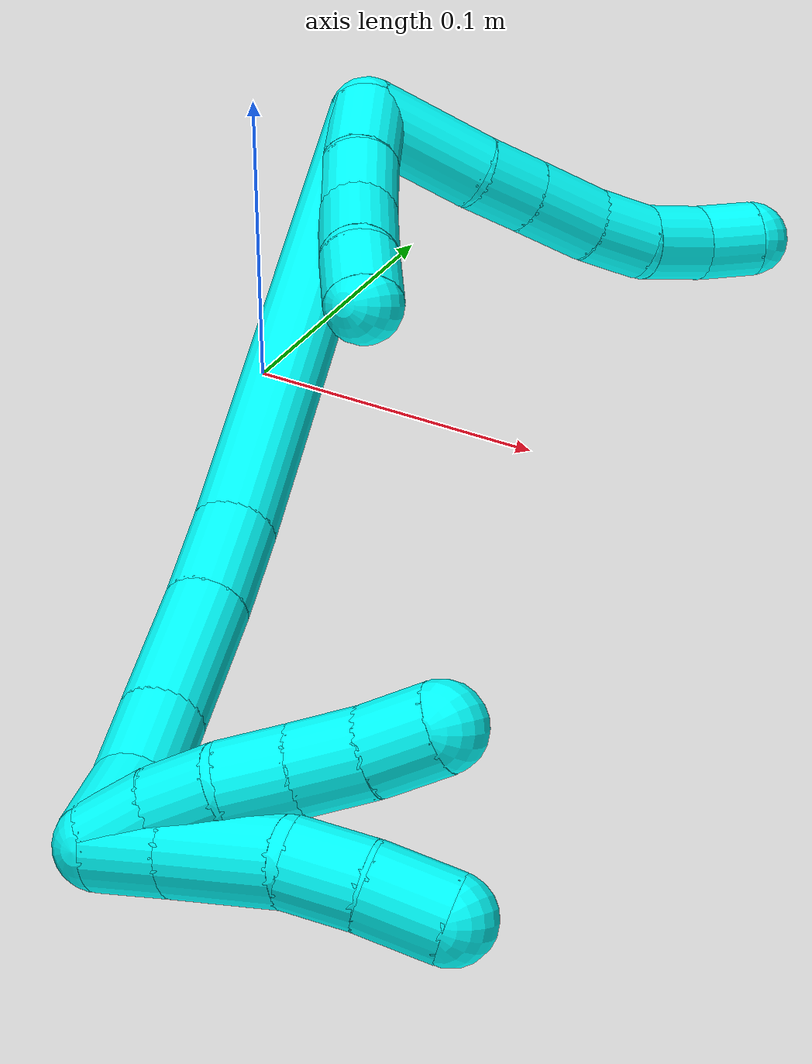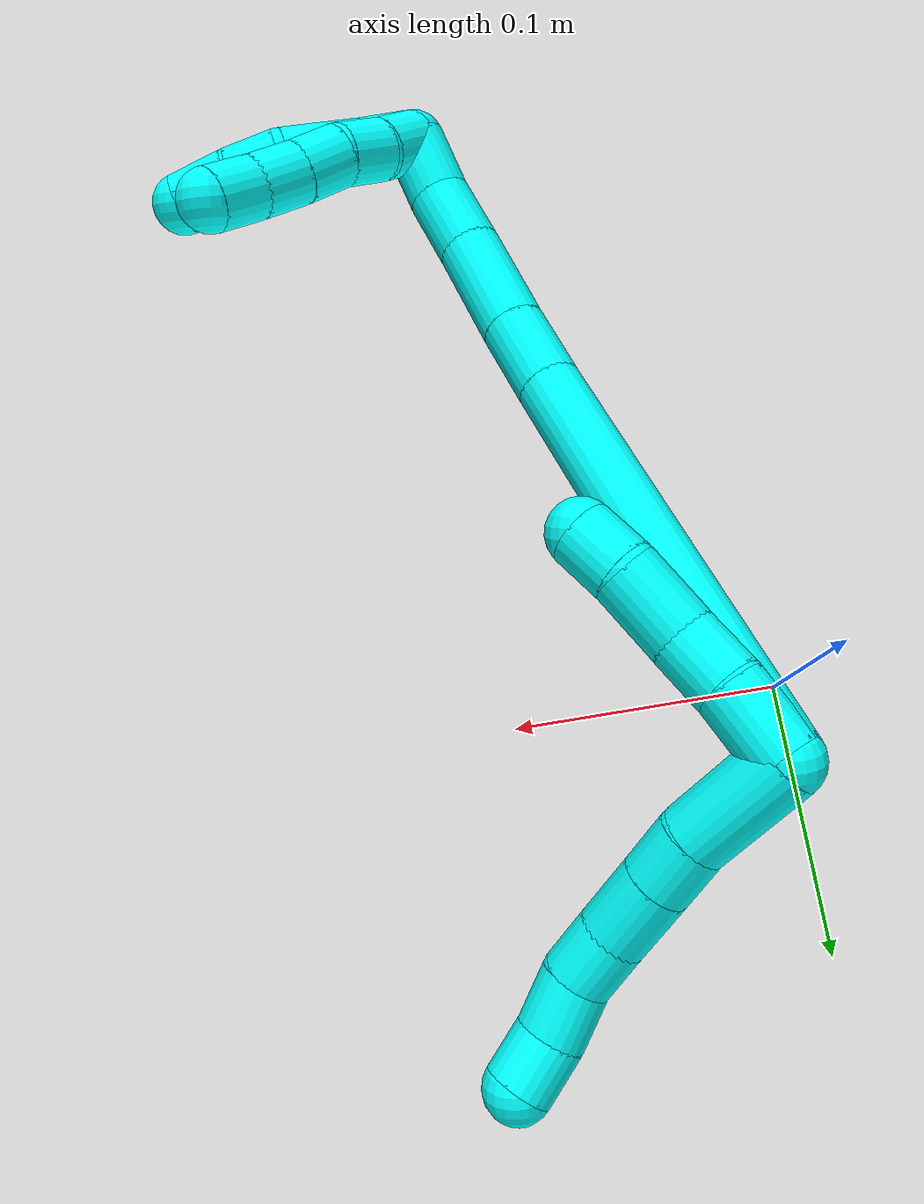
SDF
<sdf version="1.7">
 <world name="default">
  <model name="photoneo_s_sensor">
   <static>1</static>
   <pose>0 0 2 1.57079 1.57079 3.14159</pose>
   <link name="link">
    <inertial><mass>0.1</mass></inertial>
    <sensor name="sensor" type="depth">
     <update_rate>30</update_rate>
     <camera>
      <horizontal_fov>1.22</horizontal_fov>
      <image><width>1920</width><height>1200</height><format>B8G8R8</format></image>
      <clip><near>0.1</near><far>4</far></clip>
      <depth_camera><output>points</output></depth_camera>
     </camera>
     <plugin name="camera_plugin" filename="libgazebo_ros_depth_camera.so">
      <baseline>0.2</baseline>
      <alwaysOn>1</alwaysOn>
      <updateRate>0.0</updateRate>
      <cameraName>camera_ir</cameraName>
      <imageTopicName>/camera/color/image_raw</imageTopicName>
      <cameraInfoTopicName>/camera/color/camera_info</cameraInfoTopicName>
      <depthImageTopicName>/camera/depth/image_raw</depthImageTopicName>
      <depthImageCameraInfoTopicName>/camera/depth/camera_info</depthImageCameraInfoTopicName>
      <pointCloudTopicName>/camera/depth/points</pointCloudTopicName>
      <frameName>fr_optical</frameName>
      <pointCloudCutoff>0.1</pointCloudCutoff>
      <pointCloudCutoffMax>2.0</pointCloudCutoffMax>
      <distortionK1>0</distortionK1>
      <distortionK2>0</distortionK2>
      <distortionK3>0</distortionK3>
      <distortionT1>0</distortionT1>
      <distortionT2>0</distortionT2>
      <CxPrime>0</CxPrime>
      <Cx>0</Cx>
      <Cy>0</Cy>
      <focalLength>0</focalLength>
      <hackBaseline>0</hackBaseline>
     </plugin>
    </sensor>
   </link>
  </model>
  <model name="bin">
   <static>1</static>
   <link name="bottom">
    <collision name="collision-bottom">
     <pose>0 0 -0.01 0 -0 0</pose>
     <geometry><box><size>0.8 0.6 0.02</size></box></geometry>
     <surface>
      <friction><ode><mu>100</mu><mu2>100</mu2></ode></friction>
      <contact><collide_bitmask>65535</collide_bitmask></contact>
     </surface>
    </collision>
   </link>
   <link name="west_wall">
    <collision name="collision-west_wall">
     <pose>-0.41 0 0.1 0 -0 0</pose>
     <geometry><box><size>0.02 0.6 0.2</size></box></geometry>
     <surface>
      <friction><ode><mu>100</mu><mu2>100</mu2></ode></friction>
      <contact><collide_bitmask>65535</collide_bitmask></contact>
     </surface>
    </collision>
   </link>
   <link name="east_wall">
    <collision name="collision-east_wall">
     <pose>0.41 0 0.1 0 -0 0</pose>
     <geometry><box><size>0.02 0.6 0.2</size></box></geometry>
     <surface>
      <friction><ode><mu>100</mu><mu2>100</mu2></ode></friction>
      <contact><collide_bitmask>65535</collide_bitmask></contact>
     </surface>
    </collision>
   </link>
   <link name="south_wall">
    <collision name="collision-south_wall">
     <pose>0 -0.31 0.1 0 -0 0</pose>
     <geometry><box><size>0.8 0.02 0.2</size></box></geometry>
     <surface>
      <friction><ode><mu>100</mu><mu2>100</mu2></ode></friction>
      <contact><collide_bitmask>65535</collide_bitmask></contact>
     </surface>
    </collision>
   </link>
   <link name="north_wall">
    <collision name="collision-north_wall">
     <pose>0 0.31 0.1 0 -0 0</pose>
     <geometry><box><size>0.8 0.02 0.2</size></box></geometry>
     <surface>
      <friction><ode><mu>100</mu><mu2>100</mu2></ode></friction>
      <contact><collide_bitmask>65535</collide_bitmask></contact>
     </surface>
    </collision>
   </link>
  </model>
  <model name="3">
   <static>0</static>
   <link name="3">
    <collision name="collision-cylinder-e_1_2_8">
     <pose>0.015367 0.001045 -0.013637 -3.06514 0.843506 -2.97153</pose>
     <geometry><cylinder><radius>0.0125</radius><length>0.041144</length></cylinder></geometry>
     <surface>
      <friction><ode><mu>1.16</mu><mu2>1.16</mu2><slip1>0</slip1><slip2>0</slip2></ode></friction>
      <contact><ode><kp>1e+06</kp><kd>1</kd><max_vel>0</max_vel><min_depth>0.001</min_depth></ode></contact>
     </surface>
    </collision>
    <visual name="visual-cylinder-e_1_2_8">
     <pose>0.015367 0.001045 -0.013637 -3.06514 0.843506 -2.97153</pose>
     <geometry><cylinder><radius>0.0125</radius><length>0.041144</length></cylinder></geometry>
     <material><ambient>0.003922 1 0.996078 1</ambient></material>
    </visual>
    <collision name="collision-cylinder-e_2_8_9">
     <pose>0.037078 0.002572 -0.035178 -3.08061 0.675453 -2.96833</pose>
     <geometry><cylinder><radius>0.0125</radius><length>0.020292</length></cylinder></geometry>
     <surface>
      <friction><ode><mu>1.16</mu><mu2>1.16</mu2><slip1>0</slip1><slip2>0</slip2></ode></friction>
      <contact><ode><kp>1e+06</kp><kd>1</kd><max_vel>0</max_vel><min_depth>0.001</min_depth></ode></contact>
     </surface>
    </collision>
    <visual name="visual-cylinder-e_2_8_9">
     <pose>0.037078 0.002572 -0.035178 -3.08061 0.675453 -2.96833</pose>
     <geometry><cylinder><radius>0.0125</radius><length>0.020292</length></cylinder></geometry>
     <material><ambient>0.003922 1 0.996078 1</ambient></material>
    </visual>
    <collision name="collision-cylinder-e_3_9_10">
     <pose>0.051464 0.003592 -0.05297 -3.08726 0.682102 -2.98876</pose>
     <geometry><cylinder><radius>0.0125</radius><length>0.025513</length></cylinder></geometry>
     <surface>
      <friction><ode><mu>1.16</mu><mu2>1.16</mu2><slip1>0</slip1><slip2>0</slip2></ode></friction>
      <contact><ode><kp>1e+06</kp><kd>1</kd><max_vel>0</max_vel><min_depth>0.001</min_depth></ode></contact>
     </surface>
    </collision>
    <visual name="visual-cylinder-e_3_9_10">
     <pose>0.051464 0.003592 -0.05297 -3.08726 0.682102 -2.98876</pose>
     <geometry><cylinder><radius>0.0125</radius><length>0.025513</length></cylinder></geometry>
     <material><ambient>0.003922 1 0.996078 1</ambient></material>
    </visual>
    <collision name="collision-cylinder-e_4_10_11">
     <pose>0.06602 0.005699 -0.070895 -2.94883 0.671967 -2.60143</pose>
     <geometry><cylinder><radius>0.0125</radius><length>0.020929</length></cylinder></geometry>
     <surface>
      <friction><ode><mu>1.16</mu><mu2>1.16</mu2><slip1>0</slip1><slip2>0</slip2></ode></friction>
      <contact><ode><kp>1e+06</kp><kd>1</kd><max_vel>0</max_vel><min_depth>0.001</min_depth></ode></contact>
     </surface>
    </collision>
    <visual name="visual-cylinder-e_4_10_11">
     <pose>0.06602 0.005699 -0.070895 -2.94883 0.671967 -2.60143</pose>
     <geometry><cylinder><radius>0.0125</radius><length>0.020929</length></cylinder></geometry>
     <material><ambient>0.003922 1 0.996078 1</ambient></material>
    </visual>
    <collision name="collision-cylinder-e_5_11_12">
     <pose>0.076894 0.010723 -0.088337 -2.7895 0.410383 -1.72713</pose>
     <geometry><cylinder><radius>0.0125</radius><length>0.021851</length></cylinder></geometry>
     <surface>
      <friction><ode><mu>1.16</mu><mu2>1.16</mu2><slip1>0</slip1><slip2>0</slip2></ode></friction>
      <contact><ode><kp>1e+06</kp><kd>1</kd><max_vel>0</max_vel><min_depth>0.001</min_depth></ode></contact>
     </surface>
    </collision>
    <visual name="visual-cylinder-e_5_11_12">
     <pose>0.076894 0.010723 -0.088337 -2.7895 0.410383 -1.72713</pose>
     <geometry><cylinder><radius>0.0125</radius><length>0.021851</length></cylinder></geometry>
     <material><ambient>0.003922 1 0.996078 1</ambient></material>
    </visual>
    <collision name="collision-cylinder-e_6_12_6">
     <pose>0.086 0.019118 -0.105209 -2.55721 0.487465 -1.38164</pose>
     <geometry><cylinder><radius>0.0125</radius><length>0.02027</length></cylinder></geometry>
     <surface>
      <friction><ode><mu>1.16</mu><mu2>1.16</mu2><slip1>0</slip1><slip2>0</slip2></ode></friction>
      <contact><ode><kp>1e+06</kp><kd>1</kd><max_vel>0</max_vel><min_depth>0.001</min_depth></ode></contact>
     </surface>
    </collision>
    <visual name="visual-cylinder-e_6_12_6">
     <pose>0.086 0.019118 -0.105209 -2.55721 0.487465 -1.38164</pose>
     <geometry><cylinder><radius>0.0125</radius><length>0.02027</length></cylinder></geometry>
     <material><ambient>0.003922 1 0.996078 1</ambient></material>
    </visual>
    <collision name="collision-cylinder-e_1_2_13">
     <pose>0.009075 -0.003672 0.010405 0.339272 0.688276 0.122621</pose>
     <geometry><cylinder><radius>0.0125</radius><length>0.028574</length></cylinder></geometry>
     <surface>
      <friction><ode><mu>1.16</mu><mu2>1.16</mu2><slip1>0</slip1><slip2>0</slip2></ode></friction>
      <contact><ode><kp>1e+06</kp><kd>1</kd><max_vel>0</max_vel><min_depth>0.001</min_depth></ode></contact>
     </surface>
    </collision>
    <visual name="visual-cylinder-e_1_2_13">
     <pose>0.009075 -0.003672 0.010405 0.339272 0.688276 0.122621</pose>
     <geometry><cylinder><radius>0.0125</radius><length>0.028574</length></cylinder></geometry>
     <material><ambient>0.003922 1 0.996078 1</ambient></material>
    </visual>
    <collision name="collision-cylinder-e_2_13_14">
     <pose>0.026079 -0.010838 0.027968 0.454069 0.783177 0.190205</pose>
     <geometry><cylinder><radius>0.0125</radius><length>0.022478</length></cylinder></geometry>
     <surface>
      <friction><ode><mu>1.16</mu><mu2>1.16</mu2><slip1>0</slip1><slip2>0</slip2></ode></friction>
      <contact><ode><kp>1e+06</kp><kd>1</kd><max_vel>0</max_vel><min_depth>0.001</min_depth></ode></contact>
     </surface>
    </collision>
    <visual name="visual-cylinder-e_2_13_14">
     <pose>0.026079 -0.010838 0.027968 0.454069 0.783177 0.190205</pose>
     <geometry><cylinder><radius>0.0125</radius><length>0.022478</length></cylinder></geometry>
     <material><ambient>0.003922 1 0.996078 1</ambient></material>
    </visual>
    <collision name="collision-cylinder-e_3_14_15">
     <pose>0.043429 -0.015494 0.045815 0.108333 0.719453 0.040777</pose>
     <geometry><cylinder><radius>0.0125</radius><length>0.028589</length></cylinder></geometry>
     <surface>
      <friction><ode><mu>1.16</mu><mu2>1.16</mu2><slip1>0</slip1><slip2>0</slip2></ode></friction>
      <contact><ode><kp>1e+06</kp><kd>1</kd><max_vel>0</max_vel><min_depth>0.001</min_depth></ode></contact>
     </surface>
    </collision>
    <visual name="visual-cylinder-e_3_14_15">
     <pose>0.043429 -0.015494 0.045815 0.108333 0.719453 0.040777</pose>
     <geometry><cylinder><radius>0.0125</radius><length>0.028589</length></cylinder></geometry>
     <material><ambient>0.003922 1 0.996078 1</ambient></material>
    </visual>
    <collision name="collision-cylinder-e_4_15_5">
     <pose>0.060532 -0.019086 0.062724 0.372359 0.855345 0.171292</pose>
     <geometry><cylinder><radius>0.0125</radius><length>0.020359</length></cylinder></geometry>
     <surface>
      <friction><ode><mu>1.16</mu><mu2>1.16</mu2><slip1>0</slip1><slip2>0</slip2></ode></friction>
      <contact><ode><kp>1e+06</kp><kd>1</kd><max_vel>0</max_vel><min_depth>0.001</min_depth></ode></contact>
     </surface>
    </collision>
    <visual name="visual-cylinder-e_4_15_5">
     <pose>0.060532 -0.019086 0.062724 0.372359 0.855345 0.171292</pose>
     <geometry><cylinder><radius>0.0125</radius><length>0.020359</length></cylinder></geometry>
     <material><ambient>0.003922 1 0.996078 1</ambient></material>
    </visual>
    <collision name="collision-cylinder-e_1_2_16">
     <pose>0.048148 -0.041432 0.057047 0.628137 0.599155 0.199987</pose>
     <geometry><cylinder><radius>0.0125</radius><length>0.170753</length></cylinder></geometry>
     <surface>
      <friction><ode><mu>1.16</mu><mu2>1.16</mu2><slip1>0</slip1><slip2>0</slip2></ode></friction>
      <contact><ode><kp>1e+06</kp><kd>1</kd><max_vel>0</max_vel><min_depth>0.001</min_depth></ode></contact>
     </surface>
    </collision>
    <visual name="visual-cylinder-e_1_2_16">
     <pose>0.048148 -0.041432 0.057047 0.628137 0.599155 0.199987</pose>
     <geometry><cylinder><radius>0.0125</radius><length>0.170753</length></cylinder></geometry>
     <material><ambient>0.003922 1 0.996078 1</ambient></material>
    </visual>
    <collision name="collision-cylinder-e_2_16_17">
     <pose>0.104839 -0.089145 0.125534 0.502207 0.579637 0.152698</pose>
     <geometry><cylinder><radius>0.0125</radius><length>0.031197</length></cylinder></geometry>
     <surface>
      <friction><ode><mu>1.16</mu><mu2>1.16</mu2><slip1>0</slip1><slip2>0</slip2></ode></friction>
      <contact><ode><kp>1e+06</kp><kd>1</kd><max_vel>0</max_vel><min_depth>0.001</min_depth></ode></contact>
     </surface>
    </collision>
    <visual name="visual-cylinder-e_2_16_17">
     <pose>0.104839 -0.089145 0.125534 0.502207 0.579637 0.152698</pose>
     <geometry><cylinder><radius>0.0125</radius><length>0.031197</length></cylinder></geometry>
     <material><ambient>0.003922 1 0.996078 1</ambient></material>
    </visual>
    <collision name="collision-cylinder-e_3_17_18">
     <pose>0.124562 -0.104065 0.153092 0.491917 0.548672 0.141068</pose>
     <geometry><cylinder><radius>0.0125</radius><length>0.042867</length></cylinder></geometry>
     <surface>
      <friction><ode><mu>1.16</mu><mu2>1.16</mu2><slip1>0</slip1><slip2>0</slip2></ode></friction>
      <contact><ode><kp>1e+06</kp><kd>1</kd><max_vel>0</max_vel><min_depth>0.001</min_depth></ode></contact>
     </surface>
    </collision>
    <visual name="visual-cylinder-e_3_17_18">
     <pose>0.124562 -0.104065 0.153092 0.491917 0.548672 0.141068</pose>
     <geometry><cylinder><radius>0.0125</radius><length>0.042867</length></cylinder></geometry>
     <material><ambient>0.003922 1 0.996078 1</ambient></material>
    </visual>
    <collision name="collision-cylinder-e_4_18_19">
     <pose>0.143165 -0.116901 0.18049 0.356421 0.552784 0.102095</pose>
     <geometry><cylinder><radius>0.0125</radius><length>0.028281</length></cylinder></geometry>
     <surface>
      <friction><ode><mu>1.16</mu><mu2>1.16</mu2><slip1>0</slip1><slip2>0</slip2></ode></friction>
      <contact><ode><kp>1e+06</kp><kd>1</kd><max_vel>0</max_vel><min_depth>0.001</min_depth></ode></contact>
     </surface>
    </collision>
    <visual name="visual-cylinder-e_4_18_19">
     <pose>0.143165 -0.116901 0.18049 0.356421 0.552784 0.102095</pose>
     <geometry><cylinder><radius>0.0125</radius><length>0.028281</length></cylinder></geometry>
     <material><ambient>0.003922 1 0.996078 1</ambient></material>
    </visual>
    <collision name="collision-cylinder-e_5_19_1">
     <pose>0.156114 -0.123386 0.203817 0.187467 0.423234 0.040387</pose>
     <geometry><cylinder><radius>0.0125</radius><length>0.026902</length></cylinder></geometry>
     <surface>
      <friction><ode><mu>1.16</mu><mu2>1.16</mu2><slip1>0</slip1><slip2>0</slip2></ode></friction>
      <contact><ode><kp>1e+06</kp><kd>1</kd><max_vel>0</max_vel><min_depth>0.001</min_depth></ode></contact>
     </surface>
    </collision>
    <visual name="visual-cylinder-e_5_19_1">
     <pose>0.156114 -0.123386 0.203817 0.187467 0.423234 0.040387</pose>
     <geometry><cylinder><radius>0.0125</radius><length>0.026902</length></cylinder></geometry>
     <material><ambient>0.003922 1 0.996078 1</ambient></material>
    </visual>
    <collision name="collision-cylinder-e_1_1_20">
     <pose>0.170237 -0.118617 0.214733 -1.73003 0.877457 -1.0066</pose>
     <geometry><cylinder><radius>0.0125</radius><length>0.02236</length></cylinder></geometry>
     <surface>
      <friction><ode><mu>1.16</mu><mu2>1.16</mu2><slip1>0</slip1><slip2>0</slip2></ode></friction>
      <contact><ode><kp>1e+06</kp><kd>1</kd><max_vel>0</max_vel><min_depth>0.001</min_depth></ode></contact>
     </surface>
    </collision>
    <visual name="visual-cylinder-e_1_1_20">
     <pose>0.170237 -0.118617 0.214733 -1.73003 0.877457 -1.0066</pose>
     <geometry><cylinder><radius>0.0125</radius><length>0.02236</length></cylinder></geometry>
     <material><ambient>0.003922 1 0.996078 1</ambient></material>
    </visual>
    <collision name="collision-cylinder-e_2_20_21">
     <pose>0.191719 -0.101034 0.212571 -1.66819 0.883327 -0.961025</pose>
     <geometry><cylinder><radius>0.0125</radius><length>0.03334</length></cylinder></geometry>
     <surface>
      <friction><ode><mu>1.16</mu><mu2>1.16</mu2><slip1>0</slip1><slip2>0</slip2></ode></friction>
      <contact><ode><kp>1e+06</kp><kd>1</kd><max_vel>0</max_vel><min_depth>0.001</min_depth></ode></contact>
     </surface>
    </collision>
    <visual name="visual-cylinder-e_2_20_21">
     <pose>0.191719 -0.101034 0.212571 -1.66819 0.883327 -0.961025</pose>
     <geometry><cylinder><radius>0.0125</radius><length>0.03334</length></cylinder></geometry>
     <material><ambient>0.003922 1 0.996078 1</ambient></material>
    </visual>
    <collision name="collision-cylinder-e_3_21_22">
     <pose>0.213887 -0.086253 0.208695 -2.16087 1.06705 -1.67175</pose>
     <geometry><cylinder><radius>0.0125</radius><length>0.021204</length></cylinder></geometry>
     <surface>
      <friction><ode><mu>1.16</mu><mu2>1.16</mu2><slip1>0</slip1><slip2>0</slip2></ode></friction>
      <contact><ode><kp>1e+06</kp><kd>1</kd><max_vel>0</max_vel><min_depth>0.001</min_depth></ode></contact>
     </surface>
    </collision>
    <visual name="visual-cylinder-e_3_21_22">
     <pose>0.213887 -0.086253 0.208695 -2.16087 1.06705 -1.67175</pose>
     <geometry><cylinder><radius>0.0125</radius><length>0.021204</length></cylinder></geometry>
     <material><ambient>0.003922 1 0.996078 1</ambient></material>
    </visual>
    <collision name="collision-cylinder-e_4_22_4">
     <pose>0.23352 -0.07859 0.202021 -2.41351 1.11082 -2.04031</pose>
     <geometry><cylinder><radius>0.0125</radius><length>0.023096</length></cylinder></geometry>
     <surface>
      <friction><ode><mu>1.16</mu><mu2>1.16</mu2><slip1>0</slip1><slip2>0</slip2></ode></friction>
      <contact><ode><kp>1e+06</kp><kd>1</kd><max_vel>0</max_vel><min_depth>0.001</min_depth></ode></contact>
     </surface>
    </collision>
    <visual name="visual-cylinder-e_4_22_4">
     <pose>0.23352 -0.07859 0.202021 -2.41351 1.11082 -2.04031</pose>
     <geometry><cylinder><radius>0.0125</radius><length>0.023096</length></cylinder></geometry>
     <material><ambient>0.003922 1 0.996078 1</ambient></material>
    </visual>
    <collision name="collision-cylinder-e_1_1_23">
     <pose>0.165085 -0.116483 0.213946 -1.77672 0.351849 -0.430678</pose>
     <geometry><cylinder><radius>0.0125</radius><length>0.02</length></cylinder></geometry>
     <surface>
      <friction><ode><mu>1.16</mu><mu2>1.16</mu2><slip1>0</slip1><slip2>0</slip2></ode></friction>
      <contact><ode><kp>1e+06</kp><kd>1</kd><max_vel>0</max_vel><min_depth>0.001</min_depth></ode></contact>
     </surface>
    </collision>
    <visual name="visual-cylinder-e_1_1_23">
     <pose>0.165085 -0.116483 0.213946 -1.77672 0.351849 -0.430678</pose>
     <geometry><cylinder><radius>0.0125</radius><length>0.02</length></cylinder></geometry>
     <material><ambient>0.003922 1 0.996078 1</ambient></material>
    </visual>
    <collision name="collision-cylinder-e_2_23_24">
     <pose>0.173338 -0.098595 0.210923 -1.69702 0.501519 -0.565827</pose>
     <geometry><cylinder><radius>0.0125</radius><length>0.02</length></cylinder></geometry>
     <surface>
      <friction><ode><mu>1.16</mu><mu2>1.16</mu2><slip1>0</slip1><slip2>0</slip2></ode></friction>
      <contact><ode><kp>1e+06</kp><kd>1</kd><max_vel>0</max_vel><min_depth>0.001</min_depth></ode></contact>
     </surface>
    </collision>
    <visual name="visual-cylinder-e_2_23_24">
     <pose>0.173338 -0.098595 0.210923 -1.69702 0.501519 -0.565827</pose>
     <geometry><cylinder><radius>0.0125</radius><length>0.02</length></cylinder></geometry>
     <material><ambient>0.003922 1 0.996078 1</ambient></material>
    </visual>
    <collision name="collision-cylinder-e_3_24_25">
     <pose>0.183602 -0.082111 0.206716 -1.95006 0.577062 -0.825353</pose>
     <geometry><cylinder><radius>0.0125</radius><length>0.02</length></cylinder></geometry>
     <surface>
      <friction><ode><mu>1.16</mu><mu2>1.16</mu2><slip1>0</slip1><slip2>0</slip2></ode></friction>
      <contact><ode><kp>1e+06</kp><kd>1</kd><max_vel>0</max_vel><min_depth>0.001</min_depth></ode></contact>
     </surface>
    </collision>
    <visual name="visual-cylinder-e_3_24_25">
     <pose>0.183602 -0.082111 0.206716 -1.95006 0.577062 -0.825353</pose>
     <geometry><cylinder><radius>0.0125</radius><length>0.02</length></cylinder></geometry>
     <material><ambient>0.003922 1 0.996078 1</ambient></material>
    </visual>
    <collision name="collision-cylinder-e_4_25_26">
     <pose>0.194513 -0.066336 0.201086 -1.8772 0.577078 -0.770011</pose>
     <geometry><cylinder><radius>0.0125</radius><length>0.02</length></cylinder></geometry>
     <surface>
      <friction><ode><mu>1.16</mu><mu2>1.16</mu2><slip1>0</slip1><slip2>0</slip2></ode></friction>
      <contact><ode><kp>1e+06</kp><kd>1</kd><max_vel>0</max_vel><min_depth>0.001</min_depth></ode></contact>
     </surface>
    </collision>
    <visual name="visual-cylinder-e_4_25_26">
     <pose>0.194513 -0.066336 0.201086 -1.8772 0.577078 -0.770011</pose>
     <geometry><cylinder><radius>0.0125</radius><length>0.02</length></cylinder></geometry>
     <material><ambient>0.003922 1 0.996078 1</ambient></material>
    </visual>
    <collision name="collision-cylinder-e_5_26_3">
     <pose>0.204754 -0.04982 0.196455 -1.81266 0.498945 -0.628956</pose>
     <geometry><cylinder><radius>0.0125</radius><length>0.02</length></cylinder></geometry>
     <surface>
      <friction><ode><mu>1.16</mu><mu2>1.16</mu2><slip1>0</slip1><slip2>0</slip2></ode></friction>
      <contact><ode><kp>1e+06</kp><kd>1</kd><max_vel>0</max_vel><min_depth>0.001</min_depth></ode></contact>
     </surface>
    </collision>
    <visual name="visual-cylinder-e_5_26_3">
     <pose>0.204754 -0.04982 0.196455 -1.81266 0.498945 -0.628956</pose>
     <geometry><cylinder><radius>0.0125</radius><length>0.02</length></cylinder></geometry>
     <material><ambient>0.003922 1 0.996078 1</ambient></material>
    </visual>
    <collision name="collision-sphere-3">
     <pose>0.209539 -0.041295 0.194351 0 -0 0</pose>
     <geometry><sphere><radius>0.0125</radius></sphere></geometry>
     <surface>
      <friction><ode><mu>1.16</mu><mu2>1.16</mu2><slip1>0</slip1><slip2>0</slip2></ode></friction>
      <contact><ode><kp>1e+06</kp><kd>1</kd><max_vel>0</max_vel><min_depth>0.001</min_depth></ode></contact>
     </surface>
    </collision>
    <visual name="visual-sphere-3">
     <pose>0.209539 -0.041295 0.194351 0 -0 0</pose>
     <geometry><sphere><radius>0.0125</radius></sphere></geometry>
     <material><ambient>0.003922 1 0.996078 1</ambient></material>
    </visual>
    <collision name="collision-sphere-26">
     <pose>0.199969 -0.058345 0.198558 0 -0 0</pose>
     <geometry><sphere><radius>0.0125</radius></sphere></geometry>
     <surface>
      <friction><ode><mu>1.16</mu><mu2>1.16</mu2><slip1>0</slip1><slip2>0</slip2></ode></friction>
      <contact><ode><kp>1e+06</kp><kd>1</kd><max_vel>0</max_vel><min_depth>0.001</min_depth></ode></contact>
     </surface>
    </collision>
    <visual name="visual-sphere-26">
     <pose>0.199969 -0.058345 0.198558 0 -0 0</pose>
     <geometry><sphere><radius>0.0125</radius></sphere></geometry>
     <material><ambient>0.003922 1 0.996078 1</ambient></material>
    </visual>
    <collision name="collision-sphere-25">
     <pose>0.189057 -0.074326 0.203614 0 -0 0</pose>
     <geometry><sphere><radius>0.0125</radius></sphere></geometry>
     <surface>
      <friction><ode><mu>1.16</mu><mu2>1.16</mu2><slip1>0</slip1><slip2>0</slip2></ode></friction>
      <contact><ode><kp>1e+06</kp><kd>1</kd><max_vel>0</max_vel><min_depth>0.001</min_depth></ode></contact>
     </surface>
    </collision>
    <visual name="visual-sphere-25">
     <pose>0.189057 -0.074326 0.203614 0 -0 0</pose>
     <geometry><sphere><radius>0.0125</radius></sphere></geometry>
     <material><ambient>0.003922 1 0.996078 1</ambient></material>
    </visual>
    <collision name="collision-sphere-24">
     <pose>0.178146 -0.089896 0.209819 0 -0 0</pose>
     <geometry><sphere><radius>0.0125</radius></sphere></geometry>
     <surface>
      <friction><ode><mu>1.16</mu><mu2>1.16</mu2><slip1>0</slip1><slip2>0</slip2></ode></friction>
      <contact><ode><kp>1e+06</kp><kd>1</kd><max_vel>0</max_vel><min_depth>0.001</min_depth></ode></contact>
     </surface>
    </collision>
    <visual name="visual-sphere-24">
     <pose>0.178146 -0.089896 0.209819 0 -0 0</pose>
     <geometry><sphere><radius>0.0125</radius></sphere></geometry>
     <material><ambient>0.003922 1 0.996078 1</ambient></material>
    </visual>
    <collision name="collision-sphere-23">
     <pose>0.168531 -0.107294 0.212027 0 -0 0</pose>
     <geometry><sphere><radius>0.0125</radius></sphere></geometry>
     <surface>
      <friction><ode><mu>1.16</mu><mu2>1.16</mu2><slip1>0</slip1><slip2>0</slip2></ode></friction>
      <contact><ode><kp>1e+06</kp><kd>1</kd><max_vel>0</max_vel><min_depth>0.001</min_depth></ode></contact>
     </surface>
    </collision>
    <visual name="visual-sphere-23">
     <pose>0.168531 -0.107294 0.212027 0 -0 0</pose>
     <geometry><sphere><radius>0.0125</radius></sphere></geometry>
     <material><ambient>0.003922 1 0.996078 1</ambient></material>
    </visual>
    <collision name="collision-sphere-4">
     <pose>0.243868 -0.075178 0.198194 0 -0 0</pose>
     <geometry><sphere><radius>0.0125</radius></sphere></geometry>
     <surface>
      <friction><ode><mu>1.16</mu><mu2>1.16</mu2><slip1>0</slip1><slip2>0</slip2></ode></friction>
      <contact><ode><kp>1e+06</kp><kd>1</kd><max_vel>0</max_vel><min_depth>0.001</min_depth></ode></contact>
     </surface>
    </collision>
    <visual name="visual-sphere-4">
     <pose>0.243868 -0.075178 0.198194 0 -0 0</pose>
     <geometry><sphere><radius>0.0125</radius></sphere></geometry>
     <material><ambient>0.003922 1 0.996078 1</ambient></material>
    </visual>
    <collision name="collision-sphere-22">
     <pose>0.223172 -0.082001 0.205847 0 -0 0</pose>
     <geometry><sphere><radius>0.0125</radius></sphere></geometry>
     <surface>
      <friction><ode><mu>1.16</mu><mu2>1.16</mu2><slip1>0</slip1><slip2>0</slip2></ode></friction>
      <contact><ode><kp>1e+06</kp><kd>1</kd><max_vel>0</max_vel><min_depth>0.001</min_depth></ode></contact>
     </surface>
    </collision>
    <visual name="visual-sphere-22">
     <pose>0.223172 -0.082001 0.205847 0 -0 0</pose>
     <geometry><sphere><radius>0.0125</radius></sphere></geometry>
     <material><ambient>0.003922 1 0.996078 1</ambient></material>
    </visual>
    <collision name="collision-sphere-21">
     <pose>0.204602 -0.090506 0.211543 0 -0 0</pose>
     <geometry><sphere><radius>0.0125</radius></sphere></geometry>
     <surface>
      <friction><ode><mu>1.16</mu><mu2>1.16</mu2><slip1>0</slip1><slip2>0</slip2></ode></friction>
      <contact><ode><kp>1e+06</kp><kd>1</kd><max_vel>0</max_vel><min_depth>0.001</min_depth></ode></contact>
     </surface>
    </collision>
    <visual name="visual-sphere-21">
     <pose>0.204602 -0.090506 0.211543 0 -0 0</pose>
     <geometry><sphere><radius>0.0125</radius></sphere></geometry>
     <material><ambient>0.003922 1 0.996078 1</ambient></material>
    </visual>
    <collision name="collision-sphere-20">
     <pose>0.178835 -0.111562 0.2136 0 -0 0</pose>
     <geometry><sphere><radius>0.0125</radius></sphere></geometry>
     <surface>
      <friction><ode><mu>1.16</mu><mu2>1.16</mu2><slip1>0</slip1><slip2>0</slip2></ode></friction>
      <contact><ode><kp>1e+06</kp><kd>1</kd><max_vel>0</max_vel><min_depth>0.001</min_depth></ode></contact>
     </surface>
    </collision>
    <visual name="visual-sphere-20">
     <pose>0.178835 -0.111562 0.2136 0 -0 0</pose>
     <geometry><sphere><radius>0.0125</radius></sphere></geometry>
     <material><ambient>0.003922 1 0.996078 1</ambient></material>
    </visual>
    <collision name="collision-sphere-12">
     <pose>0.081253 0.014178 -0.097741 0 -0 0</pose>
     <geometry><sphere><radius>0.0125</radius></sphere></geometry>
     <surface>
      <friction><ode><mu>1.16</mu><mu2>1.16</mu2><slip1>0</slip1><slip2>0</slip2></ode></friction>
      <contact><ode><kp>1e+06</kp><kd>1</kd><max_vel>0</max_vel><min_depth>0.001</min_depth></ode></contact>
     </surface>
    </collision>
    <visual name="visual-sphere-12">
     <pose>0.081253 0.014178 -0.097741 0 -0 0</pose>
     <geometry><sphere><radius>0.0125</radius></sphere></geometry>
     <material><ambient>0.003922 1 0.996078 1</ambient></material>
    </visual>
    <collision name="collision-sphere-11">
     <pose>0.072535 0.007268 -0.078933 0 -0 0</pose>
     <geometry><sphere><radius>0.0125</radius></sphere></geometry>
     <surface>
      <friction><ode><mu>1.16</mu><mu2>1.16</mu2><slip1>0</slip1><slip2>0</slip2></ode></friction>
      <contact><ode><kp>1e+06</kp><kd>1</kd><max_vel>0</max_vel><min_depth>0.001</min_depth></ode></contact>
     </surface>
    </collision>
    <visual name="visual-sphere-11">
     <pose>0.072535 0.007268 -0.078933 0 -0 0</pose>
     <geometry><sphere><radius>0.0125</radius></sphere></geometry>
     <material><ambient>0.003922 1 0.996078 1</ambient></material>
    </visual>
    <collision name="collision-sphere-10">
     <pose>0.059506 0.00413 -0.062857 0 -0 0</pose>
     <geometry><sphere><radius>0.0125</radius></sphere></geometry>
     <surface>
      <friction><ode><mu>1.16</mu><mu2>1.16</mu2><slip1>0</slip1><slip2>0</slip2></ode></friction>
      <contact><ode><kp>1e+06</kp><kd>1</kd><max_vel>0</max_vel><min_depth>0.001</min_depth></ode></contact>
     </surface>
    </collision>
    <visual name="visual-sphere-10">
     <pose>0.059506 0.00413 -0.062857 0 -0 0</pose>
     <geometry><sphere><radius>0.0125</radius></sphere></geometry>
     <material><ambient>0.003922 1 0.996078 1</ambient></material>
    </visual>
    <collision name="collision-sphere-9">
     <pose>0.043422 0.003054 -0.043082 0 -0 0</pose>
     <geometry><sphere><radius>0.0125</radius></sphere></geometry>
     <surface>
      <friction><ode><mu>1.16</mu><mu2>1.16</mu2><slip1>0</slip1><slip2>0</slip2></ode></friction>
      <contact><ode><kp>1e+06</kp><kd>1</kd><max_vel>0</max_vel><min_depth>0.001</min_depth></ode></contact>
     </surface>
    </collision>
    <visual name="visual-sphere-9">
     <pose>0.043422 0.003054 -0.043082 0 -0 0</pose>
     <geometry><sphere><radius>0.0125</radius></sphere></geometry>
     <material><ambient>0.003922 1 0.996078 1</ambient></material>
    </visual>
    <collision name="collision-sphere-2">
     <geometry><sphere><radius>0.0125</radius></sphere></geometry>
     <surface>
      <friction><ode><mu>1.16</mu><mu2>1.16</mu2><slip1>0</slip1><slip2>0</slip2></ode></friction>
      <contact><ode><kp>1e+06</kp><kd>1</kd><max_vel>0</max_vel><min_depth>0.001</min_depth></ode></contact>
     </surface>
    </collision>
    <visual name="visual-sphere-2">
     <geometry><sphere><radius>0.0125</radius></sphere></geometry>
     <material><ambient>0.003922 1 0.996078 1</ambient></material>
    </visual>
    <collision name="collision-sphere-19">
     <pose>0.150589 -0.1211 0.191768 0 -0 0</pose>
     <geometry><sphere><radius>0.0125</radius></sphere></geometry>
     <surface>
      <friction><ode><mu>1.16</mu><mu2>1.16</mu2><slip1>0</slip1><slip2>0</slip2></ode></friction>
      <contact><ode><kp>1e+06</kp><kd>1</kd><max_vel>0</max_vel><min_depth>0.001</min_depth></ode></contact>
     </surface>
    </collision>
    <visual name="visual-sphere-19">
     <pose>0.150589 -0.1211 0.191768 0 -0 0</pose>
     <geometry><sphere><radius>0.0125</radius></sphere></geometry>
     <material><ambient>0.003922 1 0.996078 1</ambient></material>
    </visual>
    <collision name="collision-sphere-8">
     <pose>0.030734 0.002089 -0.027275 0 -0 0</pose>
     <geometry><sphere><radius>0.0125</radius></sphere></geometry>
     <surface>
      <friction><ode><mu>1.16</mu><mu2>1.16</mu2><slip1>0</slip1><slip2>0</slip2></ode></friction>
      <contact><ode><kp>1e+06</kp><kd>1</kd><max_vel>0</max_vel><min_depth>0.001</min_depth></ode></contact>
     </surface>
    </collision>
    <visual name="visual-sphere-8">
     <pose>0.030734 0.002089 -0.027275 0 -0 0</pose>
     <geometry><sphere><radius>0.0125</radius></sphere></geometry>
     <material><ambient>0.003922 1 0.996078 1</ambient></material>
    </visual>
    <collision name="collision-sphere-6">
     <pose>0.090747 0.024058 -0.112678 0 -0 0</pose>
     <geometry><sphere><radius>0.0125</radius></sphere></geometry>
     <surface>
      <friction><ode><mu>1.16</mu><mu2>1.16</mu2><slip1>0</slip1><slip2>0</slip2></ode></friction>
      <contact><ode><kp>1e+06</kp><kd>1</kd><max_vel>0</max_vel><min_depth>0.001</min_depth></ode></contact>
     </surface>
    </collision>
    <visual name="visual-sphere-6">
     <pose>0.090747 0.024058 -0.112678 0 -0 0</pose>
     <geometry><sphere><radius>0.0125</radius></sphere></geometry>
     <material><ambient>0.003922 1 0.996078 1</ambient></material>
    </visual>
    <collision name="collision-sphere-13">
     <pose>0.01815 -0.007344 0.020811 0 -0 0</pose>
     <geometry><sphere><radius>0.0125</radius></sphere></geometry>
     <surface>
      <friction><ode><mu>1.16</mu><mu2>1.16</mu2><slip1>0</slip1><slip2>0</slip2></ode></friction>
      <contact><ode><kp>1e+06</kp><kd>1</kd><max_vel>0</max_vel><min_depth>0.001</min_depth></ode></contact>
     </surface>
    </collision>
    <visual name="visual-sphere-13">
     <pose>0.01815 -0.007344 0.020811 0 -0 0</pose>
     <geometry><sphere><radius>0.0125</radius></sphere></geometry>
     <material><ambient>0.003922 1 0.996078 1</ambient></material>
    </visual>
    <collision name="collision-sphere-14">
     <pose>0.034009 -0.014331 0.035126 0 -0 0</pose>
     <geometry><sphere><radius>0.0125</radius></sphere></geometry>
     <surface>
      <friction><ode><mu>1.16</mu><mu2>1.16</mu2><slip1>0</slip1><slip2>0</slip2></ode></friction>
      <contact><ode><kp>1e+06</kp><kd>1</kd><max_vel>0</max_vel><min_depth>0.001</min_depth></ode></contact>
     </surface>
    </collision>
    <visual name="visual-sphere-14">
     <pose>0.034009 -0.014331 0.035126 0 -0 0</pose>
     <geometry><sphere><radius>0.0125</radius></sphere></geometry>
     <material><ambient>0.003922 1 0.996078 1</ambient></material>
    </visual>
    <collision name="collision-sphere-15">
     <pose>0.052848 -0.016656 0.056504 0 -0 0</pose>
     <geometry><sphere><radius>0.0125</radius></sphere></geometry>
     <surface>
      <friction><ode><mu>1.16</mu><mu2>1.16</mu2><slip1>0</slip1><slip2>0</slip2></ode></friction>
      <contact><ode><kp>1e+06</kp><kd>1</kd><max_vel>0</max_vel><min_depth>0.001</min_depth></ode></contact>
     </surface>
    </collision>
    <visual name="visual-sphere-15">
     <pose>0.052848 -0.016656 0.056504 0 -0 0</pose>
     <geometry><sphere><radius>0.0125</radius></sphere></geometry>
     <material><ambient>0.003922 1 0.996078 1</ambient></material>
    </visual>
    <collision name="collision-sphere-5">
     <pose>0.068216 -0.021515 0.068943 0 -0 0</pose>
     <geometry><sphere><radius>0.0125</radius></sphere></geometry>
     <surface>
      <friction><ode><mu>1.16</mu><mu2>1.16</mu2><slip1>0</slip1><slip2>0</slip2></ode></friction>
      <contact><ode><kp>1e+06</kp><kd>1</kd><max_vel>0</max_vel><min_depth>0.001</min_depth></ode></contact>
     </surface>
    </collision>
    <visual name="visual-sphere-5">
     <pose>0.068216 -0.021515 0.068943 0 -0 0</pose>
     <geometry><sphere><radius>0.0125</radius></sphere></geometry>
     <material><ambient>0.003922 1 0.996078 1</ambient></material>
    </visual>
    <collision name="collision-sphere-16">
     <pose>0.096295 -0.082863 0.114095 0 -0 0</pose>
     <geometry><sphere><radius>0.0125</radius></sphere></geometry>
     <surface>
      <friction><ode><mu>1.16</mu><mu2>1.16</mu2><slip1>0</slip1><slip2>0</slip2></ode></friction>
      <contact><ode><kp>1e+06</kp><kd>1</kd><max_vel>0</max_vel><min_depth>0.001</min_depth></ode></contact>
     </surface>
    </collision>
    <visual name="visual-sphere-16">
     <pose>0.096295 -0.082863 0.114095 0 -0 0</pose>
     <geometry><sphere><radius>0.0125</radius></sphere></geometry>
     <material><ambient>0.003922 1 0.996078 1</ambient></material>
    </visual>
    <collision name="collision-sphere-17">
     <pose>0.113383 -0.095427 0.136973 0 -0 0</pose>
     <geometry><sphere><radius>0.0125</radius></sphere></geometry>
     <surface>
      <friction><ode><mu>1.16</mu><mu2>1.16</mu2><slip1>0</slip1><slip2>0</slip2></ode></friction>
      <contact><ode><kp>1e+06</kp><kd>1</kd><max_vel>0</max_vel><min_depth>0.001</min_depth></ode></contact>
     </surface>
    </collision>
    <visual name="visual-sphere-17">
     <pose>0.113383 -0.095427 0.136973 0 -0 0</pose>
     <geometry><sphere><radius>0.0125</radius></sphere></geometry>
     <material><ambient>0.003922 1 0.996078 1</ambient></material>
    </visual>
    <collision name="collision-sphere-18">
     <pose>0.13574 -0.112702 0.169212 0 -0 0</pose>
     <geometry><sphere><radius>0.0125</radius></sphere></geometry>
     <surface>
      <friction><ode><mu>1.16</mu><mu2>1.16</mu2><slip1>0</slip1><slip2>0</slip2></ode></friction>
      <contact><ode><kp>1e+06</kp><kd>1</kd><max_vel>0</max_vel><min_depth>0.001</min_depth></ode></contact>
     </surface>
    </collision>
    <visual name="visual-sphere-18">
     <pose>0.13574 -0.112702 0.169212 0 -0 0</pose>
     <geometry><sphere><radius>0.0125</radius></sphere></geometry>
     <material><ambient>0.003922 1 0.996078 1</ambient></material>
    </visual>
    <collision name="collision-sphere-1">
     <pose>0.161638 -0.125672 0.215866 0 -0 0</pose>
     <geometry><sphere><radius>0.0125</radius></sphere></geometry>
     <surface>
      <friction><ode><mu>1.16</mu><mu2>1.16</mu2><slip1>0</slip1><slip2>0</slip2></ode></friction>
      <contact><ode><kp>1e+06</kp><kd>1</kd><max_vel>0</max_vel><min_depth>0.001</min_depth></ode></contact>
     </surface>
    </collision>
    <visual name="visual-sphere-1">
     <pose>0.161638 -0.125672 0.215866 0 -0 0</pose>
     <geometry><sphere><radius>0.0125</radius></sphere></geometry>
     <material><ambient>0.003922 1 0.996078 1</ambient></material>
    </visual>
    <inertial>
     <pose>0.099274 -0.052168 0.090279 0 -0 0</pose>
     <mass>0.75</mass>
     <inertia>
      <ixx>0.000455</ixx>
      <ixy>0</ixy>
      <ixz>0</ixz>
      <iyy>0.000467</iyy>
      <iyz>0</iyz>
      <izz>-6.5e-05</izz>
     </inertia>
    </inertial>
   </link>
   <pose>0.022838 0.032287 0.086729 1.09104 0.384793 -0.252682</pose>
  </model>
 </world>
</sdf>
